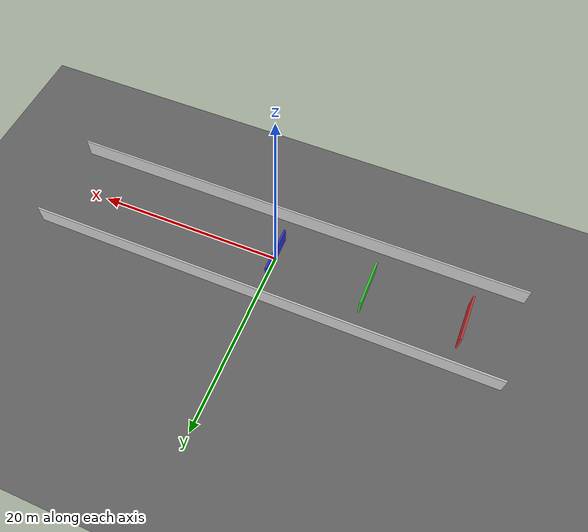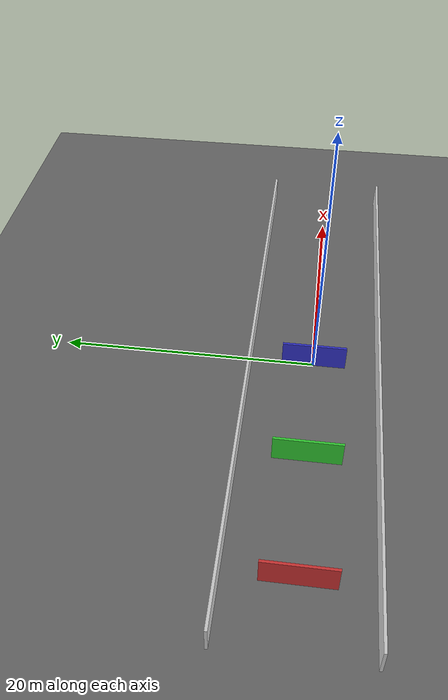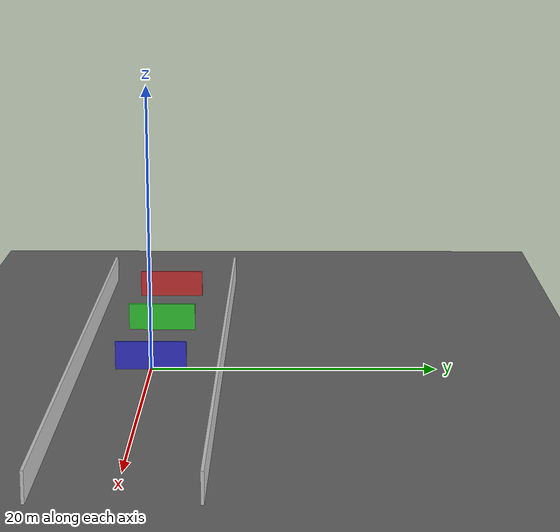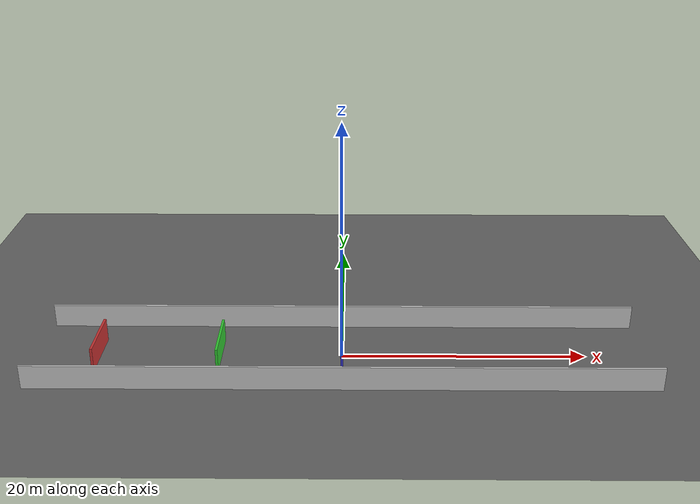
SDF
<?xml version="1.0"?>
<sdf version="1.6">
  <world name="corridor_world">
    <!-- Настройки физики -->
    <physics type="ode">
      <max_step_size>0.001</max_step_size>
      <real_time_factor>1.0</real_time_factor>
      <real_time_update_rate>1000</real_time_update_rate>
    </physics>

    <!-- Источник света -->
    <light name="sun" type="directional">
      <pose>0 0 10 0 0 0</pose>
      <diffuse>0.8 0.8 0.8 1</diffuse>
      <specular>0.2 0.2 0.2 1</specular>
      <attenuation>
        <range>1000</range>
        <constant>0.9</constant>
        <linear>0.01</linear>
        <quadratic>0.001</quadratic>
      </attenuation>
      <direction>-0.5 0.1 -0.9</direction>
    </light>

    <!-- Гравитация -->
    <gravity>0 0 -9.81</gravity>

    <!-- Пол -->
    <model name="ground_plane">
      <static>true</static>
      <link name="link">
        <collision name="collision">
          <geometry>
            <plane>
              <normal>0 0 1</normal>
              <size>100 100</size>
            </plane>
          </geometry>
        </collision>
        <visual name="visual">
          <geometry>
            <plane>
              <normal>0 0 1</normal>
              <size>100 100</size>
            </plane>
          </geometry>
          <material>
            <ambient>0.2 0.2 0.2 1</ambient>
            <diffuse>0.4 0.4 0.4 1</diffuse>
            <specular>0.1 0.1 0.1 1</specular>
          </material>
        </visual>
      </link>
    </model>

    <!-- Коридор -->
    <model name="corridor_left_wall">
      <static>true</static>
      <link name="link">
        <collision name="collision">
          <pose>0 5 1 0 0 0</pose>
          <geometry>
            <box>
              <size>50 0.2 2</size>
            </box>
          </geometry>
        </collision>
        <visual name="visual">
          <pose>0 5 1 0 0 0</pose>
          <geometry>
            <box>
              <size>50 0.2 2</size>
            </box>
          </geometry>
          <material>
            <ambient>0.8 0.8 0.8 1</ambient>
            <diffuse>0.8 0.8 0.8 1</diffuse>
          </material>
        </visual>
      </link>
    </model>

    <model name="corridor_right_wall">
      <static>true</static>
      <link name="link">
        <collision name="collision">
          <pose>0 -5 1 0 0 0</pose>
          <geometry>
            <box>
              <size>50 0.2 2</size>
            </box>
          </geometry>
        </collision>
        <visual name="visual">
          <pose>0 -5 1 0 0 0</pose>
          <geometry>
            <box>
              <size>50 0.2 2</size>
            </box>
          </geometry>
          <material>
            <ambient>0.8 0.8 0.8 1</ambient>
            <diffuse>0.8 0.8 0.8 1</diffuse>
          </material>
        </visual>
      </link>
    </model>

    <!-- Помещения -->
    <model name="room_1">
      <static>true</static>
      <link name="link">
        <collision name="collision">
          <pose>-20 0 1 0 0 0</pose>
          <geometry>
            <box>
              <size>0.2 5 2</size>
            </box>
          </geometry>
        </collision>
        <visual name="visual">
          <pose>-20 0 1 0 0 0</pose>
          <geometry>
            <box>
              <size>0.2 5 2</size>
            </box>
          </geometry>
          <material>
            <ambient>0.8 0.2 0.2 1</ambient>
            <diffuse>0.8 0.2 0.2 1</diffuse>
          </material>
        </visual>
      </link>
    </model>

    <model name="room_2">
      <static>true</static>
      <link name="link">
        <collision name="collision">
          <pose>-10 0 1 0 0 0</pose>
          <geometry>
            <box>
              <size>0.2 5 2</size>
            </box>
          </geometry>
        </collision>
        <visual name="visual">
          <pose>-10 0 1 0 0 0</pose>
          <geometry>
            <box>
              <size>0.2 5 2</size>
            </box>
          </geometry>
          <material>
            <ambient>0.2 0.8 0.2 1</ambient>
            <diffuse>0.2 0.8 0.2 1</diffuse>
          </material>
        </visual>
      </link>
    </model>

    <model name="room_3">
      <static>true</static>
      <link name="link">
        <collision name="collision">
          <pose>0 0 1 0 0 0</pose>
          <geometry>
            <box>
              <size>0.2 5 2</size>
            </box>
          </geometry>
        </collision>
        <visual name="visual">
          <pose>0 0 1 0 0 0</pose>
          <geometry>
            <box>
              <size>0.2 5 2</size>
            </box>
          </geometry>
          <material>
            <ambient>0.2 0.2 0.8 1</ambient>
            <diffuse>0.2 0.2 0.8 1</diffuse>
          </material>
        </visual>
      </link>
    </model>
  </world>
</sdf>
